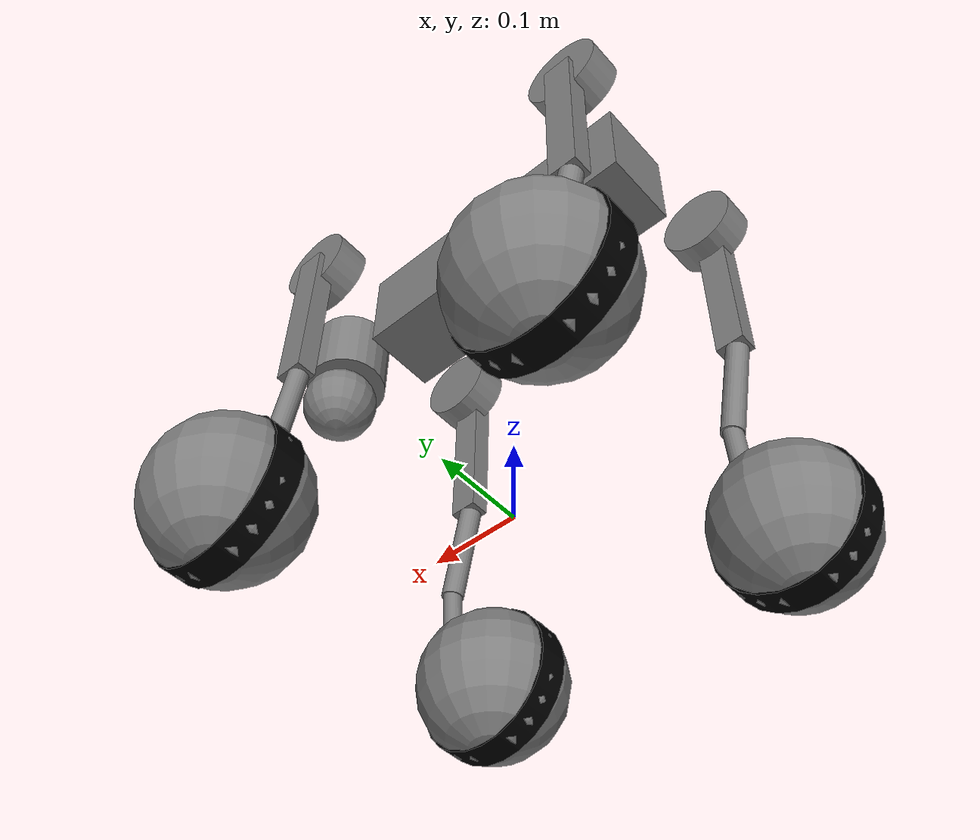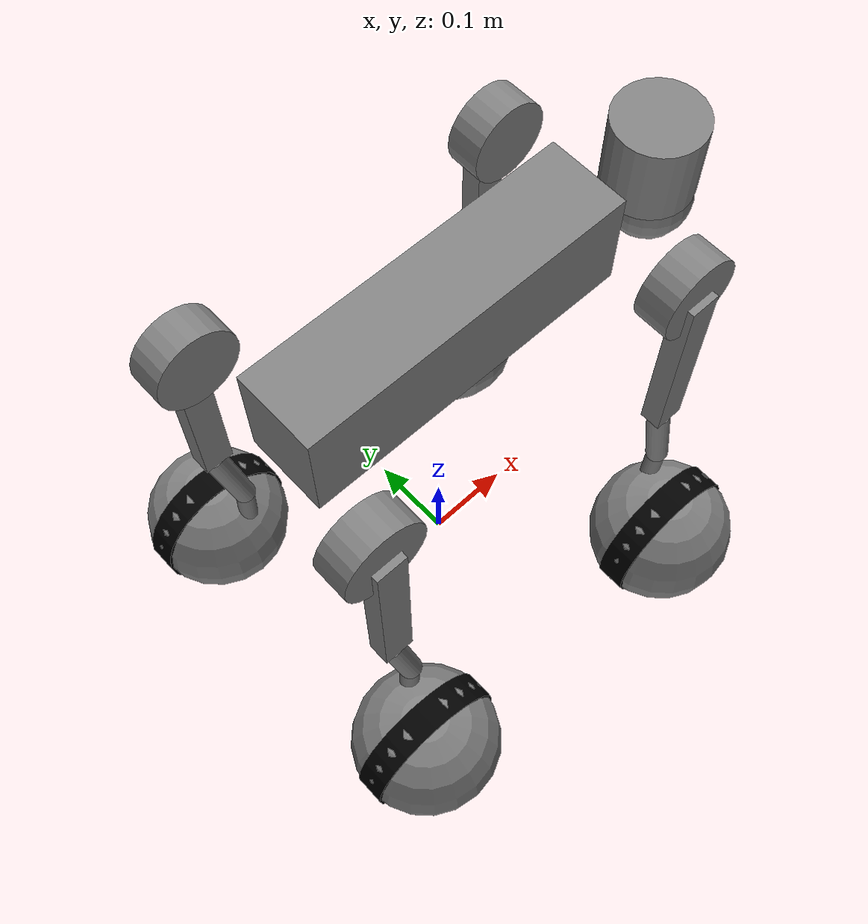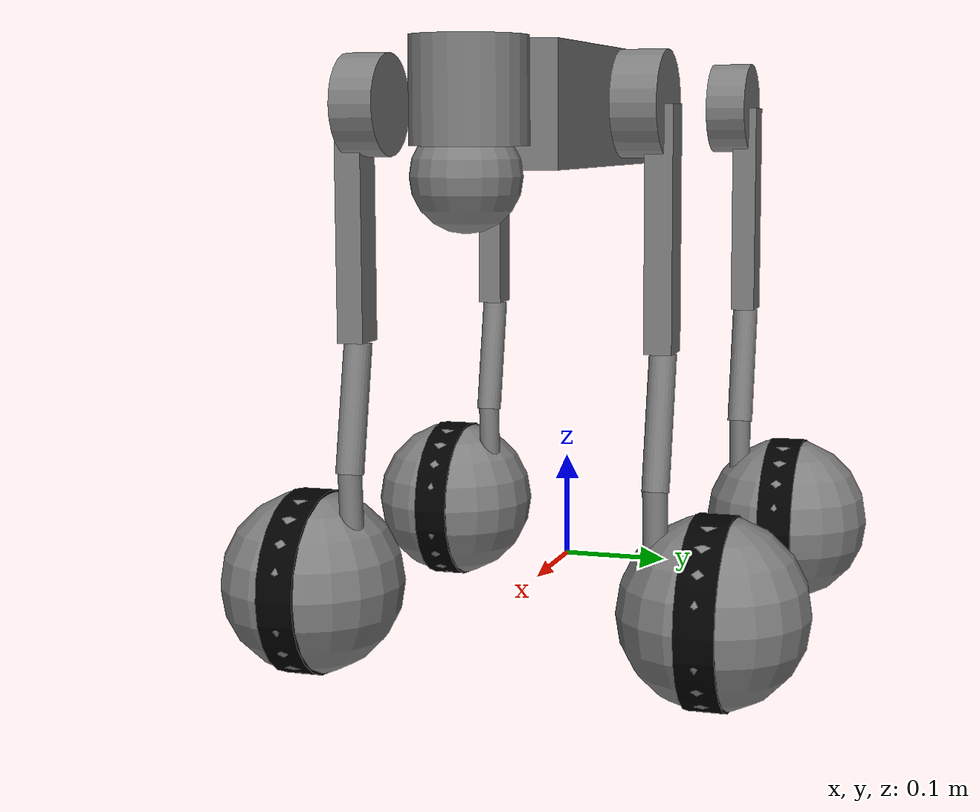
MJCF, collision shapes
<mujoco model="go2w">
  <compiler angle="radian" meshdir="assets" autolimits="true" />

  <default>
    <default class="go2w">
      <default class="visual">
        <geom type="mesh" contype="0" conaffinity="0" density="0" group="2"/>
      </default>
      <default class="collision">
        <geom priority="1" condim="6" group="3"/>
      </default>
      <site rgba="1 0 0 1" group="5"/>
    </default>
  </default>

  <asset>
    <material name="metal" rgba=".9 .95 .95 1" />
    <material name="black" rgba="0 0 0 1" />
    <material name="white" rgba="1 1 1 1" />
    <material name="gray" rgba="0.671705 0.692426 0.774270 1" />

    <mesh file="base_0.obj" />
    <mesh file="base_1.obj" />
    <mesh file="base_2.obj" />
    <mesh file="base_3.obj" />
    <mesh file="base_4.obj" />
    <mesh file="hip_0.obj" />
    <mesh file="hip_1.obj" />
    <mesh file="thigh_0.obj" />
    <mesh file="thigh_1.obj" />
    <mesh file="thigh_mirror_0.obj" />
    <mesh file="thigh_mirror_1.obj" />
    <mesh file="calf_0.obj" />
    <mesh file="calf_1.obj" />
    <mesh file="calf_mirror_0.obj" />
    <mesh file="calf_mirror_1.obj" />
  </asset>

  <worldbody>
    <body name="base_link" pos="0 0 0.445" childclass="go2w">
      <inertial pos="0.021112 0 -0.005366" quat="-0.000543471 0.713435 -0.00173769 0.700719" mass="6.921" diaginertia="0.107027 0.0980771 0.0244531" />
      <freejoint name="floating_base_joint"/>
      <geom mesh="base_0" material="black" class="visual" />
      <geom mesh="base_1" material="black" class="visual" />
      <geom mesh="base_2" material="black" class="visual" />
      <geom mesh="base_3" material="white" class="visual" />
      <geom mesh="base_4" material="gray" class="visual" />
      <geom name="base1_collision" size="0.1881 0.04675 0.057" type="box" class="collision" />
      <geom name="base2_collision" size="0.05 0.045" pos="0.285 0 0.01" type="cylinder" class="collision" />
      <geom name="base3_collision" size="0.047" pos="0.293 0 -0.06" type="sphere" class="collision" />
      <site name="imu" pos="-0.02557 0 0.04232" group="5"/>
      <body name="FL_hip" pos="0.1934 0.0465 0">
        <inertial pos="-0.0054 0.00194 -0.000105" quat="0.497014 0.499245 0.505462 0.498237" mass="0.678" diaginertia="0.00088403 0.000596003 0.000479967" />
        <joint name="FL_hip_joint" axis="1 0 0" range="-1.0472 1.0472"/>
        <geom mesh="hip_0" material="metal" class="visual" />
        <geom mesh="hip_1" material="gray" class="visual" />
        <geom name="FL_hip_collision" size="0.046 0.02" pos="0 0.08 0" quat="1 1 0 0" type="cylinder" class="collision" />
        <body name="FL_thigh" pos="0 0.0955 0">
          <inertial pos="-0.00374 -0.0223 -0.0327" quat="0.829533 0.0847635 -0.0200632 0.551623" mass="1.152" diaginertia="0.00594973 0.00584149 0.000878787" />
          <joint name="FL_thigh_joint" axis="0 1 0" range="-1.5708 3.4907"/>
          <geom mesh="thigh_0" material="metal" class="visual" />
          <geom mesh="thigh_1" material="gray" class="visual" />
          <geom name="FL_thigh_collision" size="0.1065 0.01225 0.017" pos="0 0 -0.1065" quat="0.707107 0 0.707107 0" type="box" class="collision" />
          <body name="FL_calf" pos="0 0 -0.213">
            <inertial pos="0.00548 -0.000975 -0.115" mass="0.154" fullinertia="0.00108 0.0011 3.29e-05 3.4e-07 1.72e-05 8.28e-06" />
            <joint name="FL_calf_joint" axis="0 1 0" range="-2.7227 -0.83776"/>
            <geom mesh="calf_0" material="gray" class="visual" />
            <geom mesh="calf_1" material="black" class="visual" />
            <geom name="FL_calf1_collision" size="0.012 0.06" pos="0.008 0 -0.06" quat="0.994493 0 -0.104807 0" type="cylinder" class="collision" />
            <geom name="FL_calf2_collision" size="0.011 0.0325" pos="0.02 0 -0.148" quat="0.999688 0 0.0249974 0" type="cylinder" class="collision" />
            <body name="FL_foot_motor" pos="0 0.01 -0.2264">
              <inertial pos="0 0 0" mass="0.646" diaginertia="0.001 0.0016 0.001" />
            </body>
            <body name="FL_foot" pos="0 0 -0.2264">
              <inertial pos="0 0.06 0" mass="0.52" diaginertia="0.0007 0.0012 0.0007" />
              <joint name="FL_foot_joint" axis="0 1 0" armature="0.01"/>
              <geom name="FL_foot_collision" type="sphere" size="0.086" pos="0 0.048 0" class="collision"/>
              <geom type="cylinder" size="0.086 0.0175" pos="0 0.048 0" quat="0.707107 0.707107 0 0" class="visual" material="black"/>
              <site name="FL" pos="0 0.048 0" type="sphere" size="0.022"/>
            </body>
          </body>
        </body>
      </body>
      <body name="FR_hip" pos="0.1934 -0.0465 0">
        <inertial pos="-0.0054 -0.00194 -0.000105" quat="0.498237 0.505462 0.499245 0.497014" mass="0.678" diaginertia="0.00088403 0.000596003 0.000479967" />
        <joint name="FR_hip_joint" axis="1 0 0" range="-1.0472 1.0472"/>
        <geom mesh="hip_0" material="metal" class="visual" quat="4.63268e-05 1 0 0" />
        <geom mesh="hip_1" material="gray" class="visual" quat="4.63268e-05 1 0 0" />
        <geom name="FR_hip_collision" size="0.046 0.02" pos="0 -0.08 0" quat="0.707107 0.707107 0 0" type="cylinder" class="collision" />
        <body name="FR_thigh" pos="0 -0.0955 0">
          <inertial pos="-0.00374 0.0223 -0.0327" quat="0.551623 -0.0200632 0.0847635 0.829533" mass="1.152" diaginertia="0.00594973 0.00584149 0.000878787" />
          <joint name="FR_thigh_joint" axis="0 1 0" range="-1.5708 3.4907"/>
          <geom mesh="thigh_mirror_0" material="metal" class="visual" />
          <geom mesh="thigh_mirror_1" material="gray" class="visual" />
          <geom name="FR_thigh_collision" size="0.1065 0.01225 0.017" pos="0 0 -0.1065" quat="0.707107 0 0.707107 0" type="box" class="collision" />
          <body name="FR_calf" pos="0 0 -0.213">
            <inertial pos="0.00548 0.000975 -0.115" mass="0.154" fullinertia="0.00108 0.0011 3.29e-05 -3.4e-07 1.72e-05 -8.28e-06" />
            <joint name="FR_calf_joint" axis="0 1 0" range="-2.7227 -0.83776"/>
            <geom mesh="calf_mirror_0" material="gray" class="visual" />
            <geom mesh="calf_mirror_1" material="black" class="visual" />
            <geom name="FR_calf1_collision" size="0.013 0.06" pos="0.01 0 -0.06" quat="0.995004 0 -0.0998334 0" type="cylinder" class="collision" />
            <geom name="FR_calf2_collision" size="0.011 0.0325" pos="0.02 0 -0.148" quat="0.999688 0 0.0249974 0" type="cylinder" class="collision" />
            <body name="FR_foot_motor" pos="0 -0.01 -0.2264">
              <inertial pos="0 0 0" mass="0.646" diaginertia="0.001 0.0016 0.001" />
            </body>
            <body name="FR_foot" pos="0 0 -0.2264">
              <inertial pos="0 -0.06 0" mass="0.52" diaginertia="0.0007 0.0012 0.0007" />
              <joint name="FR_foot_joint" axis="0 1 0" armature="0.01"/>
              <geom name="FR_foot_collision" type="sphere" size="0.086" pos="0 -0.048 0" class="collision"/>
              <geom type="cylinder" size="0.086 0.0175" pos="0 -0.048 0" quat="0.707107 0.707107 0 0" class="visual" material="black"/>
              <site name="FR" pos="0 -0.048 0" type="sphere" size="0.022"/>
            </body>
          </body>
        </body>
      </body>
      <body name="RL_hip" pos="-0.1934 0.0465 0">
        <inertial pos="0.0054 0.00194 -0.000105" quat="0.505462 0.498237 0.497014 0.499245" mass="0.678" diaginertia="0.00088403 0.000596003 0.000479967" />
        <joint name="RL_hip_joint" axis="1 0 0" range="-1.0472 1.0472"/>
        <geom mesh="hip_0" material="metal" class="visual" quat="4.63268e-05 0 1 0" />
        <geom mesh="hip_1" material="gray" class="visual" quat="4.63268e-05 0 1 0" />
        <geom name="RL_hip_collision" size="0.046 0.02" pos="0 0.08 0" quat="0.707107 0.707107 0 0" type="cylinder" class="collision" />
        <body name="RL_thigh" pos="0 0.0955 0">
          <inertial pos="-0.00374 -0.0223 -0.0327" quat="0.829533 0.0847635 -0.0200632 0.551623" mass="1.152" diaginertia="0.00594973 0.00584149 0.000878787" />
          <joint name="RL_thigh_joint" axis="0 1 0" range="-0.5236 4.5379"/>
          <geom mesh="thigh_0" material="metal" class="visual" />
          <geom mesh="thigh_1" material="gray" class="visual" />
          <geom name="RL_thigh_collision" size="0.1065 0.01225 0.017" pos="0 0 -0.1065" quat="0.707107 0 0.707107 0" type="box" class="collision" />
          <body name="RL_calf" pos="0 0 -0.213">
            <inertial pos="0.00548 -0.000975 -0.115" mass="0.154" fullinertia="0.00108 0.0011 3.29e-05 3.4e-07 1.72e-05 8.28e-06" />
            <joint name="RL_calf_joint" axis="0 1 0" range="-2.7227 -0.83776"/>
            <geom mesh="calf_0" material="gray" class="visual" />
            <geom mesh="calf_1" material="black" class="visual" />
            <geom name="RL_calf1_collision" size="0.013 0.06" pos="0.01 0 -0.06" quat="0.995004 0 -0.0998334 0" type="cylinder" class="collision" />
            <geom name="RL_calf2_collision" size="0.011 0.0325" pos="0.02 0 -0.148" quat="0.999688 0 0.0249974 0" type="cylinder" class="collision" />
            <body name="RL_foot_motor" pos="0 0.01 -0.2264">
              <inertial pos="0 0 0" mass="0.646" diaginertia="0.001 0.0016 0.001" />
            </body>
            <body name="RL_foot" pos="0 0 -0.2264">
              <inertial pos="0 0.06 0" mass="0.52" diaginertia="0.0007 0.0012 0.0007" />
              <joint name="RL_foot_joint" axis="0 1 0" armature="0.01"/>
              <geom name="RL_foot_collision" type="sphere" size="0.086" pos="0 0.048 0" class="collision"/>
              <geom type="cylinder" size="0.086 0.0175" pos="0 0.048 0" quat="0.707107 0.707107 0 0" class="visual" material="black"/>
              <site name="RL" pos="0 0.048 0" type="sphere" size="0.022"/>
            </body>
          </body>
        </body>
      </body>
      <body name="RR_hip" pos="-0.1934 -0.0465 0">
        <inertial pos="0.0054 -0.00194 -0.000105" quat="0.499245 0.497014 0.498237 0.505462" mass="0.678" diaginertia="0.00088403 0.000596003 0.000479967" />
        <joint name="RR_hip_joint" axis="1 0 0" range="-1.0472 1.0472"/>
        <geom mesh="hip_0" material="metal" class="visual" quat="2.14617e-09 4.63268e-05 4.63268e-05 -1" />
        <geom mesh="hip_1" material="gray" class="visual" quat="2.14617e-09 4.63268e-05 4.63268e-05 -1" />
        <geom name="RR_hip_collision" size="0.046 0.02" pos="0 -0.08 0" quat="0.707107 0.707107 0 0" type="cylinder" class="collision" />
        <body name="RR_thigh" pos="0 -0.0955 0">
          <inertial pos="-0.00374 0.0223 -0.0327" quat="0.551623 -0.0200632 0.0847635 0.829533" mass="1.152" diaginertia="0.00594973 0.00584149 0.000878787" />
          <joint name="RR_thigh_joint" axis="0 1 0" range="-0.5236 4.5379"/>
          <geom mesh="thigh_mirror_0" material="metal" class="visual" />
          <geom mesh="thigh_mirror_1" material="gray" class="visual" />
          <geom name="RR_thigh_collision" size="0.1065 0.01225 0.017" pos="0 0 -0.1065" quat="0.707107 0 0.707107 0" type="box" class="collision" />
          <body name="RR_calf" pos="0 0 -0.213">
            <inertial pos="0.00548 0.000975 -0.115" mass="0.154" fullinertia="0.00108 0.0011 3.29e-05 -3.4e-07 1.72e-05 -8.28e-06" />
            <joint name="RR_calf_joint" axis="0 1 0" range="-2.7227 -0.83776"/>
            <geom mesh="calf_mirror_0" material="gray" class="visual" />
            <geom mesh="calf_mirror_1" material="black" class="visual" />
            <geom name="RR_calf1_collision" size="0.013 0.06" pos="0.01 0 -0.06" quat="0.995004 0 -0.0998334 0" type="cylinder" class="collision" />
            <geom name="RR_calf2_collision" size="0.011 0.0325" pos="0.02 0 -0.148" quat="0.999688 0 0.0249974 0" type="cylinder" class="collision" />
            <body name="RR_foot_motor" pos="0 -0.01 -0.2264">
              <inertial pos="0 0 0" mass="0.646" diaginertia="0.001 0.0016 0.001" />
            </body>
            <body name="RR_foot" pos="0 0 -0.2264">
              <inertial pos="0 -0.06 0" mass="0.52" diaginertia="0.0007 0.0012 0.0007" />
              <joint name="RR_foot_joint" axis="0 1 0" armature="0.01"/>
              <geom name="RR_foot_collision" type="sphere" size="0.086" pos="0 -0.048 0" class="collision"/>
              <geom type="cylinder" size="0.086 0.0175" pos="0 -0.048 0" quat="0.707107 0.707107 0 0" class="visual" material="black"/>
              <site name="RR" pos="0 -0.048 0" type="sphere" size="0.022"/>
            </body>
          </body>
        </body>
      </body>
    </body>
  </worldbody>
  <actuator>
    <velocity name="FL_foot_joint" joint="FL_foot_joint" kv="1.0" ctrlrange="-30.1 30.1" forcerange="-23.7 23.7"/>
    <velocity name="FR_foot_joint" joint="FR_foot_joint" kv="1.0" ctrlrange="-30.1 30.1" forcerange="-23.7 23.7"/>
    <velocity name="RL_foot_joint" joint="RL_foot_joint" kv="1.0" ctrlrange="-30.1 30.1" forcerange="-23.7 23.7"/>
    <velocity name="RR_foot_joint" joint="RR_foot_joint" kv="1.0" ctrlrange="-30.1 30.1" forcerange="-23.7 23.7"/>
  </actuator>
  <sensor>
    <gyro name="imu_ang_vel" site="imu"/>
    <velocimeter name="imu_lin_vel" site="imu"/>
    <accelerometer name="imu_lin_acc" site="imu"/>
    <subtreeangmom name="root_angmom" body="base_link"/>
  </sensor>
</mujoco>
